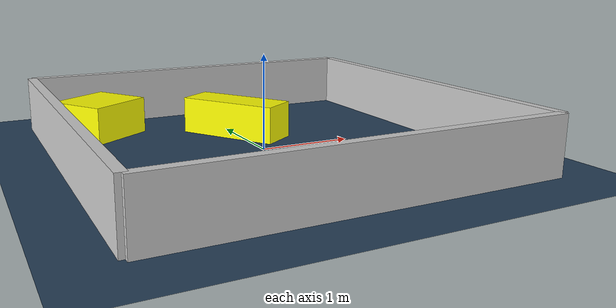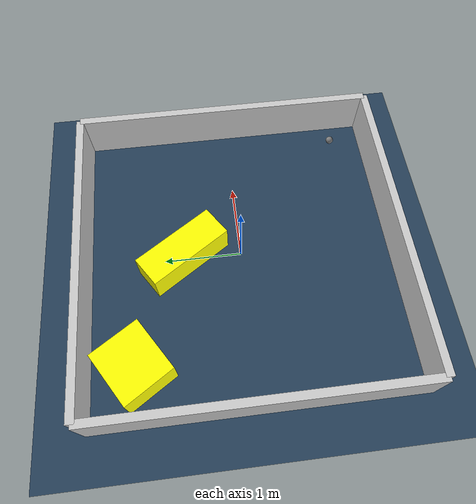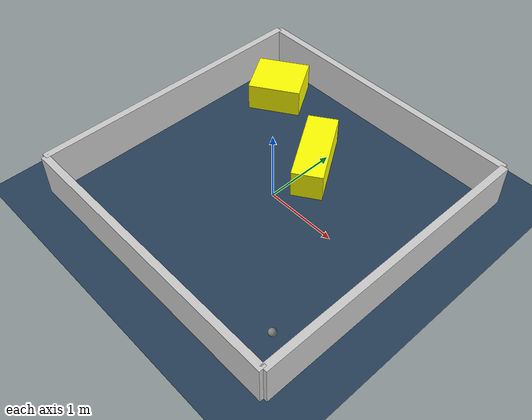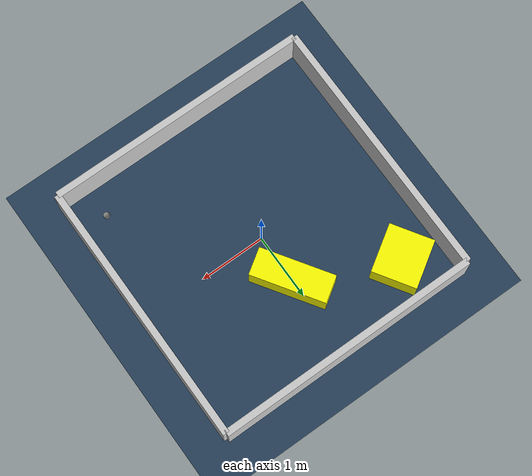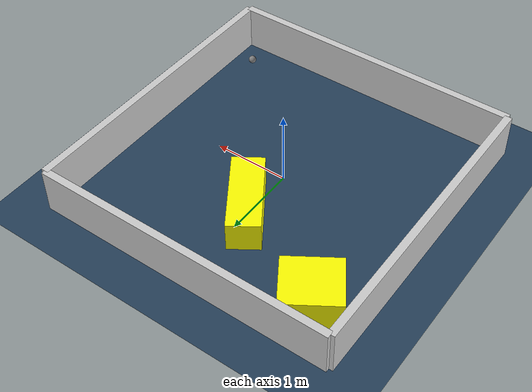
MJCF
<?xml version="1.0" ?>
<mujoco model="generated_environment">
  <option timestep="0.01" integrator="RK4" cone="elliptic"/>
  <default>
    <geom density="1"/>
  </default>
  <asset>
    <texture builtin="gradient" height="3072" rgb1="0.3 0.5 0.7" rgb2="0 0 0" type="skybox" width="512"/>
    <texture builtin="checker" height="300" mark="edge" markrgb="0.8 0.8 0.8" name="groundplane" rgb1="0.2 0.3 0.4" rgb2="0.1 0.2 0.3" type="2d" width="300"/>
    <material name="groundplane" reflectance="0.2" texrepeat="5 5" texture="groundplane" texuniform="true"/>
    <material name="robot" rgba="0.0 1.0 0.0 1"/>
  </asset>
  <worldbody>
    <light dir="0 0 -1" directional="true" pos="0 0 1.5"/>
    <geom condim="4" friction="1.0 0.005 0.001" material="groundplane" name="floor" size="0 0 0.05" type="plane"/>
    <body name="walls">
      <geom name="wall_1" condim="4" pos="-2.0 0.0 0.3" rgba="0.800000011920929 0.800000011920929 0.800000011920929 1.0" size="0.05 2.0 0.3" type="box"/>
      <geom name="wall_2" condim="4" pos="2.0 0.0 0.3" rgba="0.800000011920929 0.800000011920929 0.800000011920929 1.0" size="0.05 2.0 0.3" type="box"/>
      <geom name="wall_3" condim="4" pos="0.0 -2.0 0.3" rgba="0.800000011920929 0.800000011920929 0.800000011920929 1.0" size="2.0 0.05 0.3" type="box"/>
      <geom name="wall_4" condim="4" pos="0.0 2.0 0.3" rgba="0.800000011920929 0.800000011920929 0.800000011920929 1.0" size="2.0 0.05 0.3" type="box"/>
    </body>
    <body name="robot">
      <joint name="joint_x" type="slide" pos="0 0 0" axis="1 0 0"/>
      <joint name="joint_y" type="slide" pos="0 0 0" axis="0 1 0"/>
      <geom name="robot" type="sphere" pos="1.5810027134898768 -1.4852235138026257 0.2" size="0.05" mass="5." friction="1.0 0.005 0.0001" condim="4"/>
      <site name="sensor_ball"/>
    </body>
    <body name="obstacle_1_movable">
      <geom name="obstacle_1_movable" condim="4" pos="0.011802450859479618 0.7443751377094567 0.2" euler="0 0 213.62564983557672" friction="1.0 0.005 0.001" rgba="1 1 0 1" size="0.20870699810870216 0.5644144372507351 0.2" type="box" mass="0.1"/>
      <joint type="free"/>
    </body>
    <body name="obstacle_2_movable">
      <geom name="obstacle_2_movable" condim="4" pos="-1.3735321581051632 1.4058421257832174 0.2" euler="0 0 122.86383135576781" friction="1.0 0.005 0.001" rgba="1 1 0 1" size="0.3337392814617422 0.367257152217177 0.2" type="box" mass="0.1"/>
      <joint type="free"/>
    </body>
  </worldbody>
  <actuator>
    <motor name="actuator_x" joint="joint_x" gear="1" ctrlrange="-1 1"/>
    <motor name="actuator_y" joint="joint_y" gear="1" ctrlrange="-1 1"/>
  </actuator>
</mujoco>
